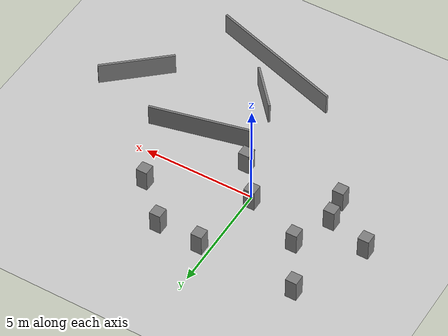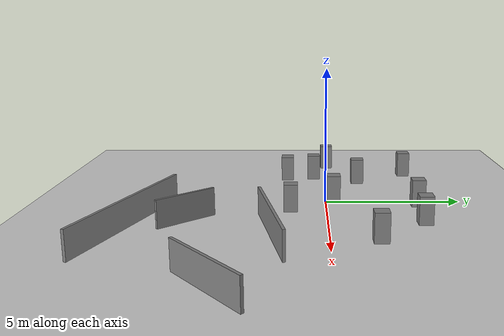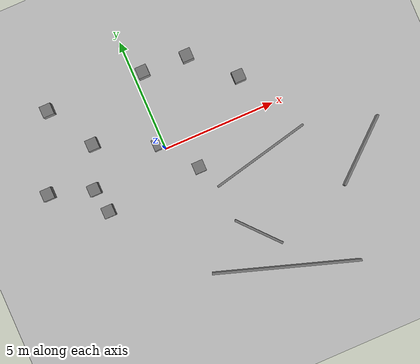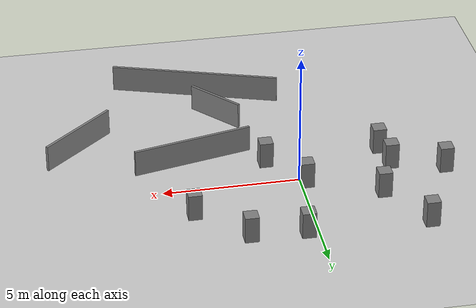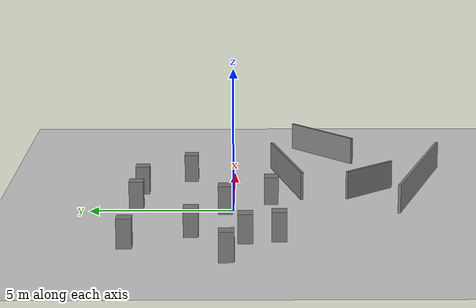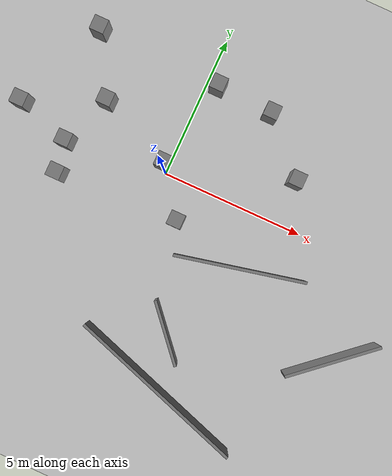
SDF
<?xml version='1.0' encoding='utf-8'?>
<sdf version="1.9">
  <world name="kyjhfgds">
    <physics name="1ms" type="dart">
      <max_step_size>0.001</max_step_size>
      <real_time_factor>1</real_time_factor>
      <real_time_update_rate>1000</real_time_update_rate>
    </physics>
    <plugin name="gz::sim::systems::Physics" filename="gz-sim-physics-system" />
    <plugin name="gz::sim::systems::UserCommands" filename="gz-sim-user-commands-system" />
    <plugin name="gz::sim::systems::SceneBroadcaster" filename="gz-sim-scene-broadcaster-system" />
    <plugin name="gz::sim::systems::Contact" filename="gz-sim-contact-system" />
    <plugin name="gz::sim::systems::Sensors" filename="gz-sim-sensors-system">
      <render_engine>ogre2</render_engine>
    </plugin>
    <gravity>0 0 -9.8</gravity>
    <magnetic_field>6e-06 2.3e-05 -4.2e-05</magnetic_field>
    <atmosphere type="adiabatic" />
    <scene>
      <ambient>0.4 0.4 0.4 1</ambient>
      <background>0.7 0.7 0.7 1</background>
      <shadows>true</shadows>
    </scene>
    <model name="ground_plane">
      <static>true</static>
      <link name="link">
        <collision name="collision">
          <geometry>
            <plane>
              <normal>0 0 1</normal>
              <size>100 100</size>
            </plane>
          </geometry>
          <surface>
            <friction>
              <ode />
            </friction>
            <bounce />
            <contact />
          </surface>
        </collision>
        <visual name="visual">
          <geometry>
            <plane>
              <normal>0 0 1</normal>
              <size>100 100</size>
            </plane>
          </geometry>
          <material>
            <ambient>0.8 0.8 0.8 1</ambient>
            <diffuse>0.8 0.8 0.8 1</diffuse>
            <specular>0.8 0.8 0.8 1</specular>
          </material>
        </visual>
        <pose>0 0 0 0 -0 0</pose>
        <inertial>
          <pose>0 0 0 0 -0 0</pose>
          <mass>1</mass>
          <inertia>
            <ixx>1</ixx>
            <ixy>0</ixy>
            <ixz>0</ixz>
            <iyy>1</iyy>
            <iyz>0</iyz>
            <izz>1</izz>
          </inertia>
        </inertial>
        <enable_wind>false</enable_wind>
      </link>
      <pose>0 0 0 0 -0 0</pose>
      <self_collide>false</self_collide>
    </model>
    <light name="sun" type="directional">
      <pose>0 0 10 0 -0 0</pose>
      <cast_shadows>true</cast_shadows>
      <intensity>1</intensity>
      <direction>-0.5 0.1 -0.9</direction>
      <diffuse>0.8 0.8 0.8 1</diffuse>
      <specular>0.2 0.2 0.2 1</specular>
      <attenuation>
        <range>1000</range>
        <linear>0.01</linear>
        <constant>0.90000000000000002</constant>
        <quadratic>0.001</quadratic>
      </attenuation>
      <spot>
        <inner_angle>0</inner_angle>
        <outer_angle>0</outer_angle>
        <falloff>0</falloff>
      </spot>
    </light>
  <model name="wall_1">
            <static>true</static>
            <type>wall</type>
            <pose>3.600000 -1.900000 0.500000 0 0 0.223477</pose>
            <link name="link">
                <collision name="collision">
                    <geometry><box><size>4.512206 0.100000 1.000000</size></box></geometry>
                </collision>
                <visual name="visual">
                    <geometry><box><size>4.512206 0.100000 1.000000</size></box></geometry>
                    <material>
                        <diffuse>0.5 0.5 0.5 1</diffuse>
                    </material>
                </visual></link></model><model name="wall_2">
            <static>true</static>
            <type>wall</type>
            <pose>7.650000 -3.400000 0.500000 0 0 -2.419938</pose>
            <link name="link">
                <collision name="collision">
                    <geometry><box><size>3.330165 0.100000 1.000000</size></box></geometry>
                </collision>
                <visual name="visual">
                    <geometry><box><size>3.330165 0.100000 1.000000</size></box></geometry>
                    <material>
                        <diffuse>0.5 0.5 0.5 1</diffuse>
                    </material>
                </visual></link></model><model name="wall_3">
            <static>true</static>
            <type>wall</type>
            <pose>2.250000 -4.850000 0.500000 0 0 2.293776</pose>
            <link name="link">
                <collision name="collision">
                    <geometry><box><size>2.267157 0.100000 1.000000</size></box></geometry>
                </collision>
                <visual name="visual">
                    <geometry><box><size>2.267157 0.100000 1.000000</size></box></geometry>
                    <material>
                        <diffuse>0.5 0.5 0.5 1</diffuse>
                    </material>
                </visual></link></model><model name="wall_4">
            <static>true</static>
            <type>wall</type>
            <pose>2.750000 -6.700000 0.500000 0 0 -0.316824</pose>
            <link name="link">
                <collision name="collision">
                    <geometry><box><size>6.419502 0.100000 1.000000</size></box></geometry>
                </collision>
                <visual name="visual">
                    <geometry><box><size>6.419502 0.100000 1.000000</size></box></geometry>
                    <material>
                        <diffuse>0.5 0.5 0.5 1</diffuse>
                    </material>
                </visual></link></model><model name="box_1">
            <static>true</static>
            <type>box</type>
            <pose>-4.000000 3.500000 0.500000 0 0 0</pose>
            <link name="link">
                <collision name="collision">
                    <geometry><box><size>0.500000 0.500000 1.000000</size></box></geometry>
                </collision>
                <visual name="visual">
                    <geometry><box><size>0.500000 0.500000 1.000000</size></box></geometry>
                    <material>
                        <diffuse>0.5 0.5 0.5 1</diffuse>
                    </material>
                </visual></link></model><model name="box_3">
            <static>true</static>
            <type>box</type>
            <pose>2.400000 3.300000 0.500000 0 0 0</pose>
            <link name="link">
                <collision name="collision">
                    <geometry><box><size>0.500000 0.500000 1.000000</size></box></geometry>
                </collision>
                <visual name="visual">
                    <geometry><box><size>0.500000 0.500000 1.000000</size></box></geometry>
                    <material>
                        <diffuse>0.5 0.5 0.5 1</diffuse>
                    </material>
                </visual></link></model><model name="box_4">
            <static>true</static>
            <type>box</type>
            <pose>4.100000 1.600000 0.500000 0 0 0</pose>
            <link name="link">
                <collision name="collision">
                    <geometry><box><size>0.500000 0.500000 1.000000</size></box></geometry>
                </collision>
                <visual name="visual">
                    <geometry><box><size>0.500000 0.500000 1.000000</size></box></geometry>
                    <material>
                        <diffuse>0.5 0.5 0.5 1</diffuse>
                    </material>
                </visual></link></model><model name="box_5">
            <static>true</static>
            <type>box</type>
            <pose>-0.200000 0.300000 0.500000 0 0 0</pose>
            <link name="link">
                <collision name="collision">
                    <geometry><box><size>0.500000 0.500000 1.000000</size></box></geometry>
                </collision>
                <visual name="visual">
                    <geometry><box><size>0.500000 0.500000 1.000000</size></box></geometry>
                    <material>
                        <diffuse>0.5 0.5 0.5 1</diffuse>
                    </material>
                </visual></link></model><model name="box_6">
            <static>true</static>
            <type>box</type>
            <pose>-2.800000 1.400000 0.500000 0 0 0</pose>
            <link name="link">
                <collision name="collision">
                    <geometry><box><size>0.500000 0.500000 1.000000</size></box></geometry>
                </collision>
                <visual name="visual">
                    <geometry><box><size>0.500000 0.500000 1.000000</size></box></geometry>
                    <material>
                        <diffuse>0.5 0.5 0.5 1</diffuse>
                    </material>
                </visual></link></model><model name="box_7">
            <static>true</static>
            <type>box</type>
            <pose>-3.300000 -1.500000 0.500000 0 0 0</pose>
            <link name="link">
                <collision name="collision">
                    <geometry><box><size>0.500000 0.500000 1.000000</size></box></geometry>
                </collision>
                <visual name="visual">
                    <geometry><box><size>0.500000 0.500000 1.000000</size></box></geometry>
                    <material>
                        <diffuse>0.5 0.5 0.5 1</diffuse>
                    </material>
                </visual></link></model><model name="box_8">
            <static>true</static>
            <type>box</type>
            <pose>1.000000 -1.300000 0.500000 0 0 0</pose>
            <link name="link">
                <collision name="collision">
                    <geometry><box><size>0.500000 0.500000 1.000000</size></box></geometry>
                </collision>
                <visual name="visual">
                    <geometry><box><size>0.500000 0.500000 1.000000</size></box></geometry>
                    <material>
                        <diffuse>0.5 0.5 0.5 1</diffuse>
                    </material>
                </visual></link></model><model name="box_9">
            <static>true</static>
            <type>box</type>
            <pose>-3.500000 -0.400000 0.500000 0 0 0</pose>
            <link name="link">
                <collision name="collision">
                    <geometry><box><size>0.500000 0.500000 1.000000</size></box></geometry>
                </collision>
                <visual name="visual">
                    <geometry><box><size>0.500000 0.500000 1.000000</size></box></geometry>
                    <material>
                        <diffuse>0.5 0.5 0.5 1</diffuse>
                    </material>
                </visual></link></model><model name="box_10">
            <static>true</static>
            <type>box</type>
            <pose>-5.400000 0.200000 0.500000 0 0 0</pose>
            <link name="link">
                <collision name="collision">
                    <geometry><box><size>0.500000 0.500000 1.000000</size></box></geometry>
                </collision>
                <visual name="visual">
                    <geometry><box><size>0.500000 0.500000 1.000000</size></box></geometry>
                    <material>
                        <diffuse>0.5 0.5 0.5 1</diffuse>
                    </material>
                </visual></link></model><model name="box_2">
            <static>false</static>
            <type>box</type>
            <pose>0.400000 3.400000 0.500000 0 0 0</pose>
            <link name="link">
                <collision name="collision">
                    <geometry><box><size>0.500000 0.500000 1.000000</size></box></geometry>
                </collision>
                <visual name="visual">
                    <geometry><box><size>0.500000 0.500000 1.000000</size></box></geometry>
                    <material>
                        <diffuse>0.5 0.5 0.5 1</diffuse>
                    </material>
                </visual><inertial>
                <mass>250.000000</mass>
                <inertia>
                    <ixx>26.041667</ixx><ixy>0</ixy><ixz>0</ixz>
                    <iyy>26.041667</iyy><iyz>0</iyz>
                    <izz>10.416667</izz>
                </inertia>
            </inertial><gravity>false</gravity></link><motion><type>linear</type><velocity>1.000000</velocity><std>0.100000</std><point><x>-5.100000</x><y>2.400000</y></point><point><x>-1.400000</x><y>4.000000</y></point></motion></model></world>
</sdf>
